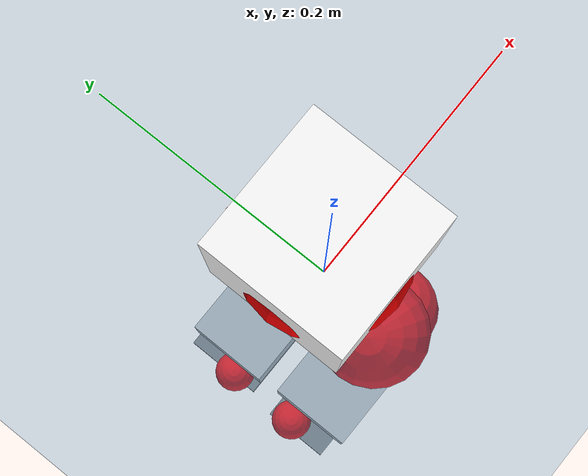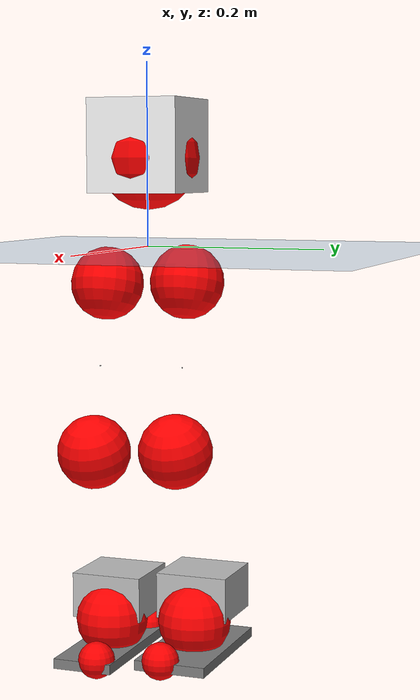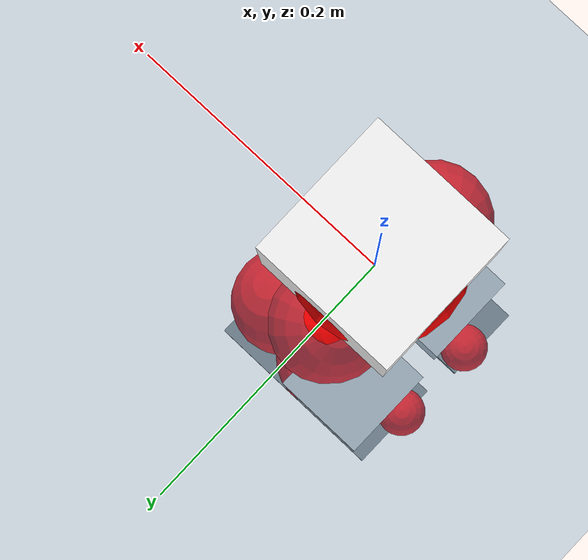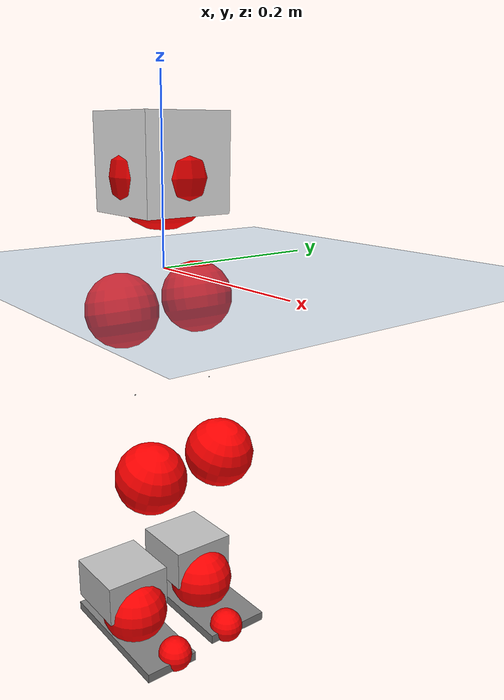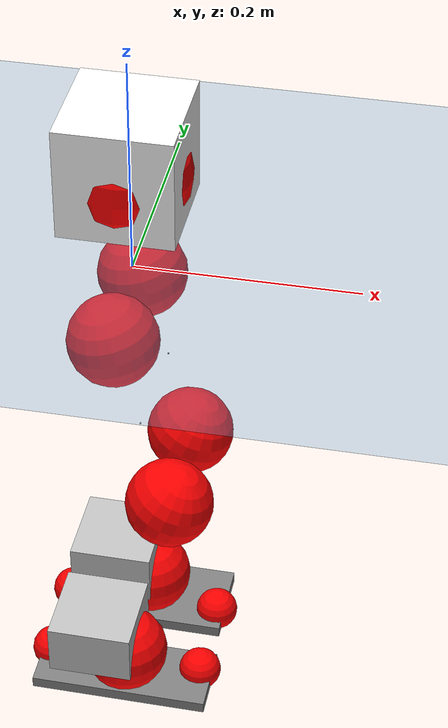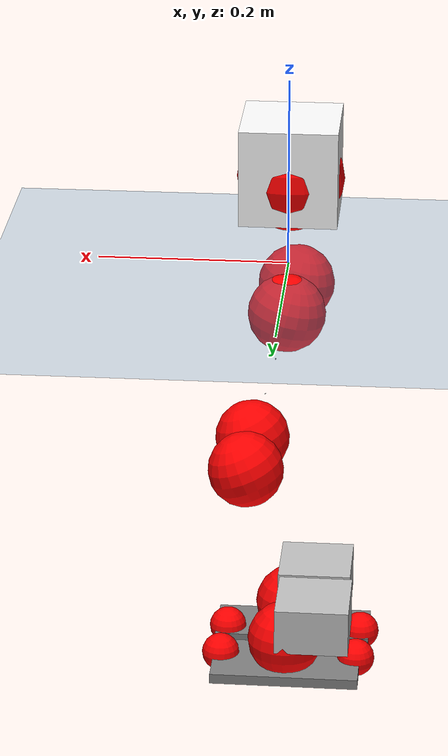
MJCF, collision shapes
<mujoco model="pi_12dof_release_v1">
  <compiler angle="radian" assetdir="assets" balanceinertia="true" inertiafromgeom="false"/>

  <option timestep="0.005" density="1.2" viscosity="2e-05"/>

  <size nkey="1"/>

  <visual>
    <quality shadowsize="8192"/>
    <map shadowclip="0.5"/>
  </visual>

  <default>
    <default class="/">
      <joint armature="0.01" damping="0.01" frictionloss="0.01"/>
      <geom contype="0" conaffinity="0" group="1" solref="-1000 -80"/>
      <site size="0.01 0.005 0.005" group="5"/>
      <general forcelimited="true" biastype="affine" gainprm="20" biasprm="0 -20 -0.5"/>
      <default class="foot">
        <geom size="0.0845 0.036 0.005" type="box" condim="6" group="4" priority="1" friction="0.9 0.2 0.2" solimp="0.015 1 0.005"/>
      </default>
      <default class="reward_collision_sphere">
        <geom group="5" rgba="1 0 0 1"/>
      </default>
    </default>
  </default>

  <asset>
    <texture type="skybox" colorspace="auto" name="//unnamed_texture_0" builtin="gradient" rgb1="0.95 0.95 0.95" rgb2="0.95 0.95 0.95" width="100" height="600"/>
    <texture type="2d" colorspace="auto" name="texplane" builtin="checker" rgb1="0.345 0.575 0.748" rgb2="0.345 0.575 0.748" markrgb="1 1 1" width="512" height="512"/>
    <material name="MatPlane" class="/" texture="texplane" texuniform="true" texrepeat="2 2" specular="0.9"/>
    <mesh name="baselink_1" class="/" file="baselink_1.STL"/>
    <mesh name="r_hip_pitch_link" class="/" file="r_hip_pitch_link.STL"/>
    <mesh name="r_hip_roll_link" class="/" file="r_hip_roll_link.STL"/>
    <mesh name="r_thigh_link" class="/" file="r_thigh_link.STL"/>
    <mesh name="r_calf_link" class="/" file="r_calf_link.STL"/>
    <mesh name="r_ankle_pitch_link" class="/" file="r_ankle_pitch_link.STL"/>
    <mesh name="r_ankle_roll_link" class="/" file="r_ankle_roll_link.STL"/>
    <mesh name="l_hip_pitch_link" class="/" file="l_hip_pitch_link.STL"/>
    <mesh name="l_hip_roll_link" class="/" file="l_hip_roll_link.STL"/>
    <mesh name="l_thigh_link" class="/" file="l_thigh_link.STL"/>
    <mesh name="l_calf_link" class="/" file="l_calf_link.STL"/>
    <mesh name="l_ankle_pitch_link" class="/" file="l_ankle_pitch_link.STL"/>
    <mesh name="l_ankle_roll_link" class="/" file="l_ankle_roll_link.STL"/>
  </asset>

  <worldbody>
    <geom name="floor" class="/" size="100 100 0.125" type="plane" group="0" material="MatPlane"/>
    <light name="toplight_shadow" class="/" pos="0 0 5" dir="0.0990148 0.0990148 -0.990148" type="directional" ambient="0.04 0.04 0.04" diffuse="0.55 0.55 0.55" specular="0.12 0.12 0.12"/>
    <light name="toplight_fill" class="/" pos="0 0 5" dir="0.0990148 0.0990148 -0.990148" type="directional" castshadow="false" ambient="0.04 0.04 0.04" diffuse="0.3 0.3 0.3" specular="0.08 0.08 0.08"/>
    <body name="trunk" pos="-0.00211516 0.000459364 0.00263532" quat="0.999999 0.000365178 0.000351154 -0.00128688">
      <inertial pos="0.0044764 -0.000471409 0.0512714" quat="0.692249 0.0154853 0.00429915 0.72148" mass="2.25076" diaginertia="0.0154779 0.000852992 0.0179338"/>
      <joint name="//unnamed_joint_0" type="free"/>
      <geom name="//unnamed_geom_1" class="/" type="mesh" density="0" rgba="1 1 1 1" mesh="baselink_1"/>
      <geom name="//unnamed_geom_2" class="/" size="0.0509546 0.0509546 0.0509546" pos="0 0 0.106922" type="box" rgba="1 1 1 1"/>
      <geom name="//unnamed_geom_3" class="reward_collision_sphere" size="0.05605" pos="0 0 0.0935566"/>
      <site name="imu" class="/" pos="-0.00157009 0.00143447 0.00137278" size="0.0101909"/>
      <camera name="track" class="/" pos="0 -1.24723 0" quat="0.707107 0.707107 0 0" mode="trackcom"/>
      <camera name="ego_camera" class="/" pos="0.0822854 0 0.240574" quat="-0.5 -0.5 0.5 0.5"/>
      <body name="r_hip_pitch_link" pos="-0.00102531 -0.0154843 -0.0464986" quat="0.992219 2.81537e-05 -0.124502 3.41739e-05">
        <inertial pos="0.00161655 -0.0365509 6.68601e-05" quat="-0.0187483 0.706247 -0.0294863 0.707103" mass="0.413919" diaginertia="0.000174882 9.33034e-06 0.000364423"/>
        <joint name="r_hip_pitch_joint" class="/" pos="0 0 0" axis="0.0059616 -0.999982 0.00105501" stiffness="0.00263619" range="-1.75203 1.26555" armature="0.00990152" damping="0.0138539" frictionloss="0.00878216"/>
        <geom name="//unnamed_geom_4" class="/" type="mesh" density="0" rgba="0.75294 0.75294 0.75294 1" mesh="r_hip_pitch_link"/>
        <geom name="//unnamed_geom_5" class="/" size="0.000509546 0.000509546 0.000509546" type="box" rgba="0.75294 0.75294 0.75294 1"/>
        <body name="r_hip_roll_link" pos="-0.00235108 -0.0360585 0.00233717" quat="1 2.38979e-05 5.33278e-05 -5.19327e-06">
          <inertial pos="-0.00180656 6.51606e-05 -0.07939" quat="0.702174 -0.0838202 -0.0832795 0.702133" mass="0.402865" diaginertia="0.000531436 2.67468e-05 0.000566375"/>
          <joint name="r_hip_roll_joint" class="/" pos="0 0 0" axis="-0.999961 -0.00864526 0.00166497" range="-0.112693 0.490457" armature="0.00906072" damping="0.0143351" frictionloss="0.00986785"/>
          <geom name="//unnamed_geom_6" class="/" type="mesh" density="0" rgba="0.75294 0.75294 0.75294 1" mesh="r_hip_roll_link"/>
          <geom name="//unnamed_geom_7" class="/" size="0.000509546 0.000509546 0.000509546" type="box" rgba="0.75294 0.75294 0.75294 1"/>
          <geom name="//unnamed_geom_8" class="reward_collision_sphere" size="0.0407637"/>
          <body name="r_thigh_link" pos="-0.000757292 0.00031363 -0.0927832" quat="1 0.000314365 0.000188189 -0.00089273">
            <inertial pos="-0.000855198 0.00301549 -0.0663655" quat="0.734902 0.678169 -0.000753097 -0.00232516" mass="0.1173" diaginertia="0.000193518 8.78367e-06 0.000248244"/>
            <joint name="r_thigh_joint" class="/" pos="0 0 0" axis="-0.0002797 -0.000858778 -1" stiffness="0.00793366" range="-0.337738 0.554117" armature="0.00993039" damping="0" frictionloss="0.0115666"/>
            <geom name="//unnamed_geom_9" class="/" type="mesh" density="0" rgba="0.75294 0.75294 0.75294 1" mesh="r_thigh_link"/>
            <geom name="//unnamed_geom_10" class="/" size="0.000509546 0.000509546 0.000509546" type="box" rgba="0.75294 0.75294 0.75294 1"/>
            <body name="r_calf_link" pos="0.000901947 0.00241823 -0.0957831" quat="0.9476 1.73548e-05 0.319458 7.71281e-05">
              <inertial pos="-0.00269696 0.00126008 -0.095467" quat="0.999979 -0.00410071 -0.00469219 0.00148647" mass="0.877376" diaginertia="0.00558406 0.000333539 0.000739448"/>
              <joint name="r_calf_joint" class="/" pos="0 0 0" axis="0.00368368 -0.999966 0.00735772" stiffness="0.00391011" range="-1.64667 0.703078" armature="0.00867204" damping="0" frictionloss="0.0099764"/>
              <geom name="//unnamed_geom_11" class="/" type="mesh" density="0" rgba="0.75294 0.75294 0.75294 1" mesh="r_calf_link"/>
              <geom name="//unnamed_geom_12" class="/" size="0.000509546 0.000509546 0.000509546" type="box" rgba="0.75294 0.75294 0.75294 1"/>
              <geom name="//unnamed_geom_13" class="reward_collision_sphere" size="0.0407637"/>
              <body name="r_ankle_pitch_link" pos="0.00228833 -0.00172785 -0.187792" quat="0.979987 -3.35818e-05 -0.199063 -3.31285e-05">
                <inertial pos="0.00492748 0.000290933 -0.00273233" quat="0.00943219 0.704832 -0.0116712 0.709216" mass="0.185979" diaginertia="0.000466984 2.03314e-05 0.000499893"/>
                <joint name="r_ankle_pitch_joint" class="/" pos="0 0 0" axis="0.00701179 -0.999951 -0.00701702" range="-1.29027 0.543524" armature="0.0113632" damping="0.00407901" frictionloss="0.0102408"/>
                <geom name="//unnamed_geom_14" class="/" type="mesh" density="0" rgba="0.75294 0.75294 0.75294 1" mesh="r_ankle_pitch_link"/>
                <geom name="//unnamed_geom_15" class="/" size="0.0397446 0.0407637 0.0254773" type="box" rgba="0.75294 0.75294 0.75294 1"/>
                <body name="r_ankle_roll_link" pos="0.0804912 0.00140784 -8.56728e-05" quat="0.999999 -0.000909432 -0.000225375 -0.000754464">
                  <inertial pos="-0.0276317 0.000149095 -0.018868" quat="0.558125 0.428396 0.438446 0.55923" mass="0.575278" diaginertia="0.00189173 9.54591e-05 0.00122882"/>
                  <joint name="r_ankle_roll_joint" class="/" pos="0 0 0" axis="-0.999905 -0.0090819 0.0103485" range="-0.10881 0.12789" armature="0.00987503" damping="0.00685732" frictionloss="0.0112943"/>
                  <geom name="//unnamed_geom_16" class="/" type="mesh" density="0" rgba="0.75294 0.75294 0.75294 1" mesh="r_ankle_roll_link"/>
                  <geom name="//unnamed_geom_17" class="/" type="mesh" rgba="0.75294 0.75294 0.75294 1" mesh="r_ankle_roll_link"/>
                  <geom name="right_foot" class="foot" size="0.0851887 0.0336418 0.00558221" pos="-0.0559541 0 -0.058807"/>
                  <geom name="//unnamed_geom_19" class="reward_collision_sphere" size="0.0407637" pos="-0.0548569 0 -0.0267305"/>
                  <geom name="//unnamed_geom_20" class="reward_collision_sphere" size="0.0203818" pos="0.0164571 0.0124723 -0.0534609"/>
                  <geom name="//unnamed_geom_21" class="reward_collision_sphere" size="0.0203818" pos="-0.131657 0.0124723 -0.0534609"/>
                  <site name="right_foot" class="foot" pos="-0.0559541 0 -0.058807" size="0.0101909"/>
                </body>
              </body>
            </body>
          </body>
        </body>
      </body>
      <body name="l_hip_pitch_link" pos="-0.000253666 0.0127604 -0.043792" quat="0.992199 2.36642e-05 -0.124663 3.33702e-05">
        <inertial pos="0.000597304 0.0355514 0.000613331" quat="-0.0377035 0.704792 0.0237648 0.708013" mass="0.410704" diaginertia="0.000197301 9.62395e-06 0.000412326"/>
        <joint name="l_hip_pitch_joint" class="/" pos="0 0 0" axis="0.00200405 0.999977 0.00644966" range="-1.21963 1.74305" armature="0.00969887" damping="0.0230995" frictionloss="0.00912344"/>
        <geom name="//unnamed_geom_22" class="/" type="mesh" density="0" rgba="0.75294 0.75294 0.75294 1" mesh="l_hip_pitch_link"/>
        <geom name="//unnamed_geom_23" class="/" size="0.000509546 0.000509546 0.000509546" type="box" rgba="0.75294 0.75294 0.75294 1"/>
        <body name="l_hip_roll_link" pos="0.00120821 0.0322353 0.00292425" quat="0.999999 -0.000160166 -0.000540759 -0.00124438">
          <inertial pos="-0.000443353 0.00260845 -0.0804345" quat="0.6994 -0.0729079 -0.0767525 0.706847" mass="0.387649" diaginertia="0.000526083 2.61716e-05 0.000553128"/>
          <joint name="l_hip_roll_joint" class="/" pos="0 0 0" axis="-0.999885 -0.0151877 0.000109104" stiffness="0.000364705" range="-0.449034 0.0774295" armature="0.00904589" damping="0.0139857" frictionloss="0.00889686"/>
          <geom name="//unnamed_geom_24" class="/" type="mesh" density="0" rgba="0.75294 0.75294 0.75294 1" mesh="l_hip_roll_link"/>
          <geom name="//unnamed_geom_25" class="/" size="0.000509546 0.000509546 0.000509546" type="box" rgba="0.75294 0.75294 0.75294 1"/>
          <geom name="//unnamed_geom_26" class="reward_collision_sphere" size="0.0407637"/>
          <body name="l_thigh_link" pos="-0.00164035 0.0022775 -0.0943727" quat="1 -3.22173e-06 3.06201e-05 -0.000166486">
            <inertial pos="0.00285411 -0.000549811 -0.0663568" quat="0.680503 0.732688 -0.00733364 -0.00545202" mass="0.115982" diaginertia="0.000188873 8.7706e-06 0.000248414"/>
            <joint name="l_thigh_joint" class="/" pos="0 0 0" axis="0.00124841 -0.00208925 -0.999997" range="-0.589181 0.24988" armature="0.0114049" damping="0.00451333" frictionloss="0.00982019"/>
            <geom name="//unnamed_geom_27" class="/" type="mesh" density="0" rgba="0.75294 0.75294 0.75294 1" mesh="l_thigh_link"/>
            <geom name="//unnamed_geom_28" class="/" size="0.000509546 0.000509546 0.000509546" type="box" rgba="0.75294 0.75294 0.75294 1"/>
            <body name="l_calf_link" pos="-0.00222444 9.8313e-06 -0.0911367" quat="0.947643 -3.75678e-05 0.319333 -3.27585e-05">
              <inertial pos="-0.00222268 0.00424694 -0.0923683" quat="0.999905 0.00934185 0.0082006 0.00595003" mass="0.888002" diaginertia="0.00573992 0.000333418 0.000754944"/>
              <joint name="l_calf_joint" class="/" pos="0 0 0" axis="0.00156534 0.999984 0.00543047" stiffness="0.00984957" range="-0.645457 1.7066" armature="0.0100106" damping="0.0027016" frictionloss="0.0115656"/>
              <geom name="//unnamed_geom_29" class="/" type="mesh" density="0" rgba="0.75294 0.75294 0.75294 1" mesh="l_calf_link"/>
              <geom name="//unnamed_geom_30" class="/" size="0.000509546 0.000509546 0.000509546" type="box" rgba="0.75294 0.75294 0.75294 1"/>
              <geom name="//unnamed_geom_31" class="reward_collision_sphere" size="0.0407637"/>
              <body name="l_ankle_pitch_link" pos="-0.00142142 0.00387129 -0.187078" quat="0.979997 -0.000130581 -0.199012 -0.000134973">
                <inertial pos="0.00441029 0.00190332 0.0014572" quat="-0.00044275 0.706477 0.000882488 0.707735" mass="0.177326" diaginertia="0.000466111 2.04041e-05 0.00049334"/>
                <joint name="l_ankle_pitch_joint" class="/" pos="0 0 0" axis="-0.00352722 0.999988 0.00344427" stiffness="0.00299035" range="-0.561024 1.25938" armature="0.00916871" damping="0.010884" frictionloss="0.0115978"/>
                <geom name="//unnamed_geom_32" class="/" type="mesh" density="0" rgba="0.75294 0.75294 0.75294 1" mesh="l_ankle_pitch_link"/>
                <geom name="//unnamed_geom_33" class="/" size="0.0397446 0.0407637 0.0254773" type="box" rgba="0.75294 0.75294 0.75294 1"/>
                <body name="l_ankle_roll_link" pos="0.0853053 0.00122283 -0.000625115" quat="1 0.000111693 0.000218221 -3.49646e-05">
                  <inertial pos="-0.0255022 -0.00331199 -0.0175815" quat="0.556899 0.430603 0.440435 0.557191" mass="0.541441" diaginertia="0.00175802 9.713e-05 0.0011738"/>
                  <joint name="l_ankle_roll_joint" class="/" pos="0 0 0" axis="-0.999999 0.00075969 -0.000898746" stiffness="0.00267536" range="-0.139692 0.113222" armature="0.0108623" damping="0.00588821" frictionloss="0.0116005"/>
                  <geom name="//unnamed_geom_34" class="/" type="mesh" density="0" rgba="0.75294 0.75294 0.75294 1" mesh="l_ankle_roll_link"/>
                  <geom name="//unnamed_geom_35" class="/" type="mesh" rgba="0.75294 0.75294 0.75294 1" mesh="l_ankle_roll_link"/>
                  <geom name="left_foot" class="foot" size="0.0800163 0.0402721 0.00554641" pos="-0.0559541 0 -0.058807"/>
                  <geom name="//unnamed_geom_37" class="reward_collision_sphere" size="0.0407637" pos="-0.0548569 0 -0.0267305"/>
                  <geom name="//unnamed_geom_38" class="reward_collision_sphere" size="0.0203818" pos="0.0164571 -0.0124723 -0.0534609"/>
                  <geom name="//unnamed_geom_39" class="reward_collision_sphere" size="0.0203818" pos="-0.131657 -0.0124723 -0.0534609"/>
                  <site name="left_foot" class="foot" pos="-0.0559541 0 -0.058807" size="0.0101909"/>
                </body>
              </body>
            </body>
          </body>
        </body>
      </body>
    </body>
  </worldbody>

  <contact>
    <pair class="/" geom1="floor" geom2="right_foot" name="//unnamed_contact_1"/>
    <pair class="/" geom1="floor" geom2="left_foot" name="//unnamed_contact_0"/>
  </contact>

  <actuator>
    <general name="r_hip_pitch_joint" class="/" joint="r_hip_pitch_joint" forcerange="-22.3761 22.3761" gainprm="21.4395" biasprm="0 -21.4395 -0.485548"/>
    <general name="r_hip_roll_joint" class="/" joint="r_hip_roll_joint" forcerange="-21.7678 21.7678" gainprm="21.4395" biasprm="0 -21.4395 -0.485548"/>
    <general name="r_thigh_joint" class="/" joint="r_thigh_joint" forcerange="-21.0725 21.0725" gainprm="21.4395" biasprm="0 -21.4395 -0.485548"/>
    <general name="r_calf_joint" class="/" joint="r_calf_joint" forcerange="-21.2884 21.2884" gainprm="21.4395" biasprm="0 -21.4395 -0.485548"/>
    <general name="r_ankle_pitch_joint" class="/" joint="r_ankle_pitch_joint" forcerange="-22.206 22.206" gainprm="21.4395" biasprm="0 -21.4395 -0.485548"/>
    <general name="r_ankle_roll_joint" class="/" joint="r_ankle_roll_joint" forcerange="-21.2577 21.2577" gainprm="21.4395" biasprm="0 -21.4395 -0.485548"/>
    <general name="l_hip_pitch_joint" class="/" joint="l_hip_pitch_joint" forcerange="-20.3094 20.3094" gainprm="21.4395" biasprm="0 -21.4395 -0.485548"/>
    <general name="l_hip_roll_joint" class="/" joint="l_hip_roll_joint" forcerange="-21.9945 21.9945" gainprm="21.4395" biasprm="0 -21.4395 -0.485548"/>
    <general name="l_thigh_joint" class="/" joint="l_thigh_joint" forcerange="-19.2966 19.2966" gainprm="21.4395" biasprm="0 -21.4395 -0.485548"/>
    <general name="l_calf_joint" class="/" joint="l_calf_joint" forcerange="-20.6272 20.6272" gainprm="21.4395" biasprm="0 -21.4395 -0.485548"/>
    <general name="l_ankle_pitch_joint" class="/" joint="l_ankle_pitch_joint" forcerange="-22.888 22.888" gainprm="21.4395" biasprm="0 -21.4395 -0.485548"/>
    <general name="l_ankle_roll_joint" class="/" joint="l_ankle_roll_joint" forcerange="-20.0977 20.0977" gainprm="21.4395" biasprm="0 -21.4395 -0.485548"/>
  </actuator>

  <sensor>
    <gyro site="imu" name="imu_angular_velocity"/>
    <velocimeter site="imu" name="imu_linear_velocity"/>
    <framelinvel objtype="site" objname="left_foot" name="left_foot_global_linear_velocity"/>
    <framelinvel objtype="site" objname="right_foot" name="right_foot_global_linear_velocity"/>
  </sensor>

  <keyframe>
    <key name="home" qpos="0 0 0.291 1 0 0 0 0.4 0 0 -0.8 0.4 0 -0.4 0 0 0.8 -0.4 0"/>
  </keyframe>
</mujoco>
